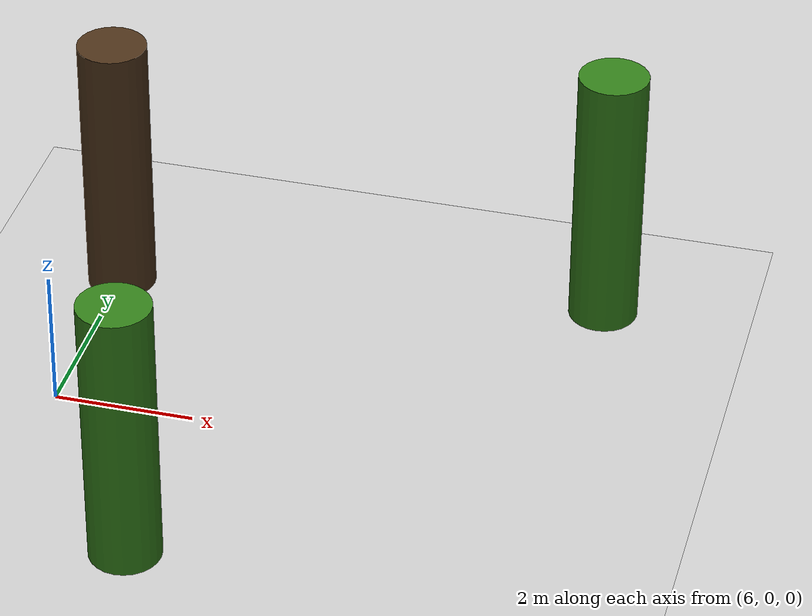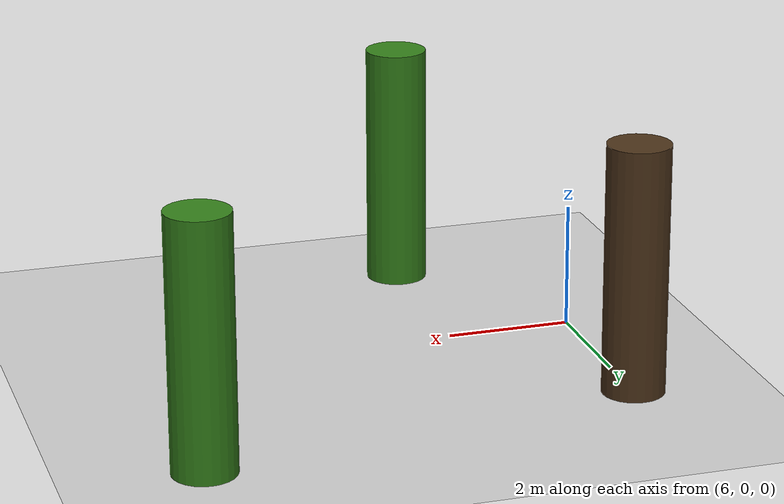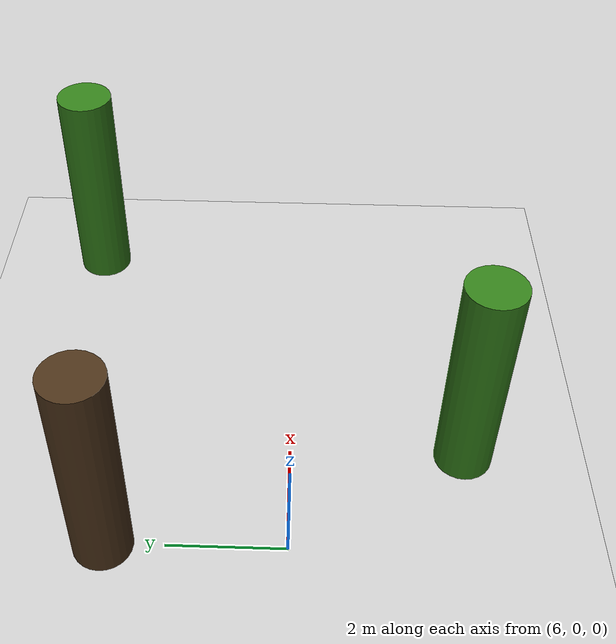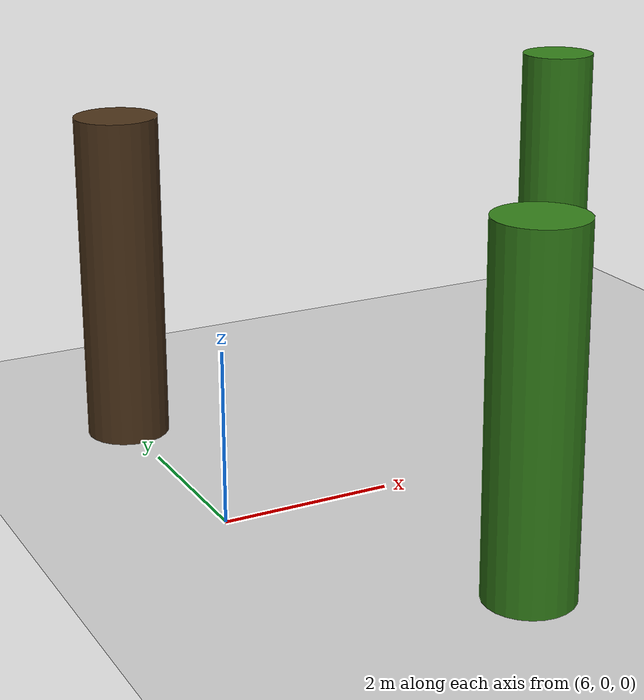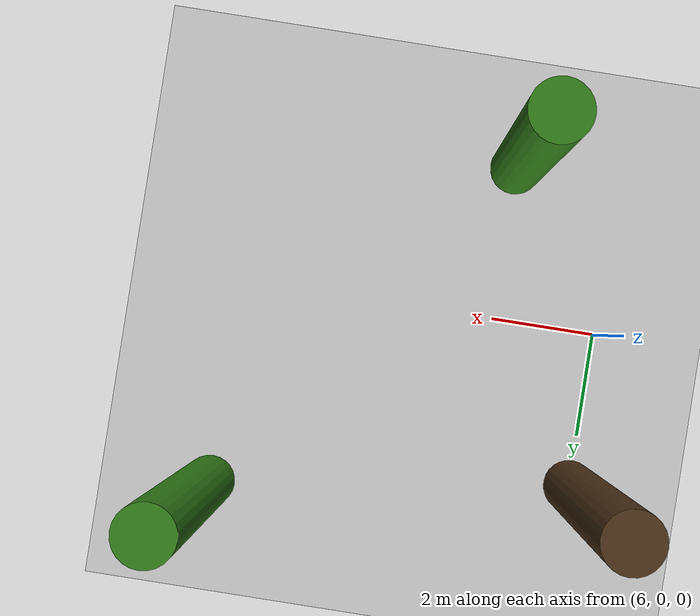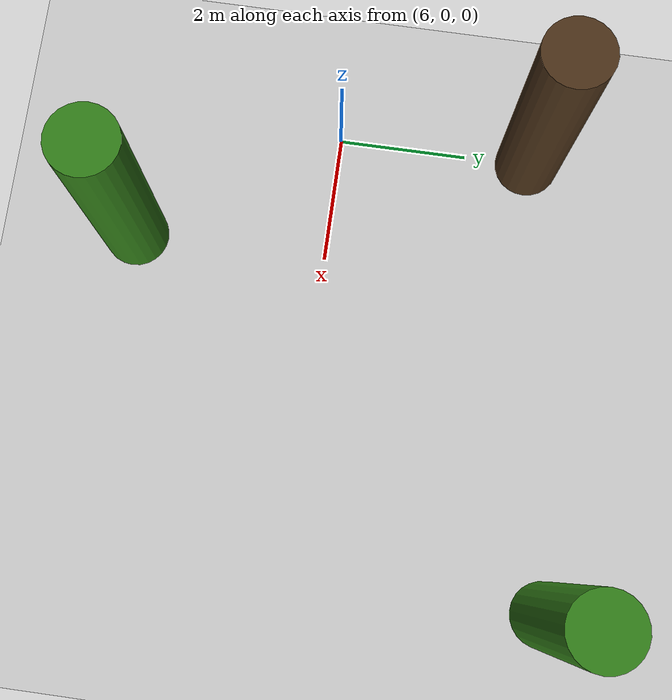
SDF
<?xml version="1.0"?>
<sdf version="1.6">
  <world name="teamed_forest">
    <include><uri>model://sun</uri></include>
    <include><uri>model://ground_plane</uri></include>
    <physics type="ode"><max_step_size>0.004</max_step_size><real_time_update_rate>250</real_time_update_rate></physics>
    <model name="tree_0"><static>true</static><pose>6 3 2 0 0 0</pose><link name="trunk"><collision name="collision"><geometry><cylinder><radius>0.5</radius><length>4</length></cylinder></geometry></collision><visual name="visual"><geometry><cylinder><radius>0.5</radius><length>4</length></cylinder></geometry><material><ambient>0.3 0.2 0.1 1</ambient><diffuse>0.3 0.2 0.1 1</diffuse></material></visual></link></model>
    <model name="tree_1"><static>true</static><pose>8 -3 2 0 0 0</pose><link name="trunk"><collision name="collision"><geometry><cylinder><radius>0.5</radius><length>4</length></cylinder></geometry></collision><visual name="visual"><geometry><cylinder><radius>0.5</radius><length>4</length></cylinder></geometry><material><ambient>0.2 0.5 0.1 1</ambient><diffuse>0.2 0.5 0.1 1</diffuse></material></visual></link></model>
    <model name="tree_2"><static>true</static><pose>13 4 2 0 0 0</pose><link name="trunk"><collision name="collision"><geometry><cylinder><radius>0.5</radius><length>4</length></cylinder></geometry></collision><visual name="visual"><geometry><cylinder><radius>0.5</radius><length>4</length></cylinder></geometry><material><ambient>0.2 0.5 0.1 1</ambient><diffuse>0.2 0.5 0.1 1</diffuse></material></visual></link></model>
  </world>
</sdf>
